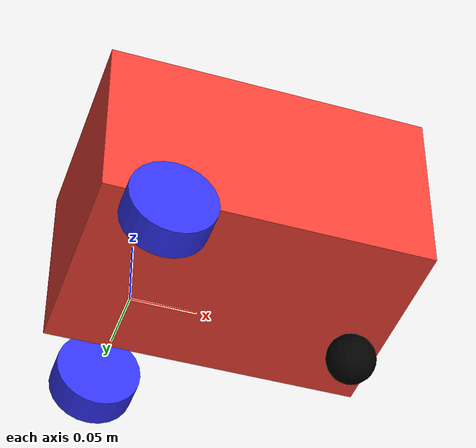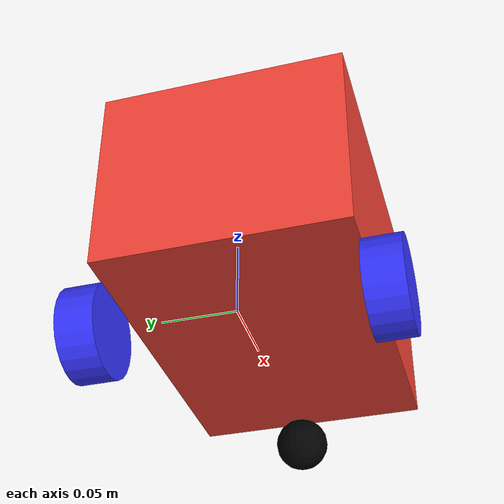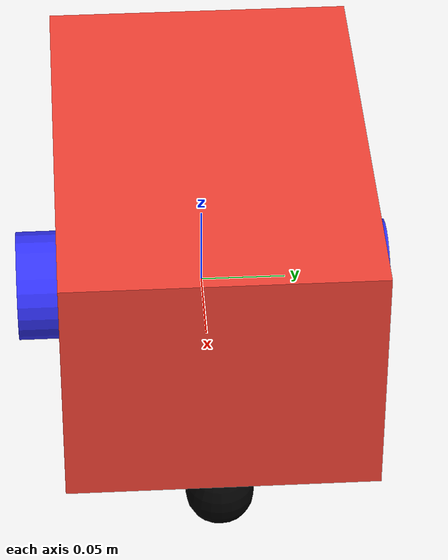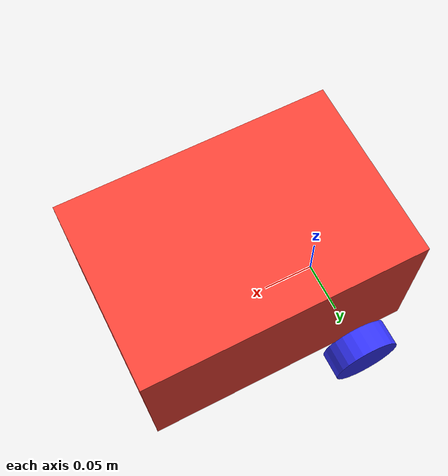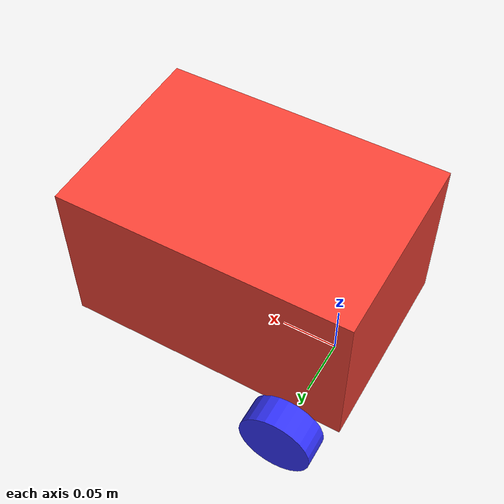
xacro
<?xml version="1.0"?>
<robot xmlns:xacro="http://www.ros.org/wiki/xacro">
<!--setting material properties which will be used later-->
<xacro:include filename="inertia.xacro"/>
<!-- Import the wheel macro -->
<xacro:include filename="$(find diff_drive_robot)/robot_urdf_description/wheel_macro.xacro"/>

<!-- Define chassisproperties -->
<xacro:property name="chassis_length" value="0.25"/>
<xacro:property name="chassis_width" value="0.17"/>
<xacro:property name="chassis_height" value="0.14"/>
<xacro:property name="chassis_mass" value="0.7"/>
<xacro:property name="chassis_offset_x" value="0.045"/> <!-- relative base link-->
<xacro:property name= "chassis_offset_z" value= "0.023"/> <!-- relative base link-->
<!--  wheel properties -->
<xacro:property name="driven_wheel_thickness" value="0.026"/>
<xacro:property name="driven_wheel_radius" value="0.0325"/>
<xacro:property name="driven_wheel_mass" value="0.02"/> <!--change with actual mass -->
<xacro:property name="driven_wheel_offset_y" value ="0.0975"/> <!-- relative to base link-->
<!--  castor wheel properties -->
<xacro:property name="castor_wheel_thickness" value="0.022"/> <!--used for cylinderical castor wheel-->
<xacro:property name="castor_wheel_radius" value="0.019"/>
<xacro:property name="castor_wheel_mass" value="0.01"/> <!--change with actual mass -->
<xacro:property name= "castor_wheel_offset_x" value="0.215"/>
<!-- relative to chassis-->
<xacro:property name= "castor_wheel_offset_z" value="${-0.035}"/> <!-- relative to chassis-->

<!--constants-->
<xacro:property name="PI" value="3.14159"/>

<!-- setting material colors-->

<material name="White">
    <color rgba="1 1 1 1"/>
</material>
<material name="Orange">
    <color rgba="1 0.3 0.1 1"/>
</material>
<material name="Blue">
    <color rgba="0.2 0.2 1 1"/>
</material>
<material name="Black">
    <color rgba="0 0 0 1"/>
</material>
<material name="Brown">
    <color rgba="${222/255} ${207/255} ${195/255} 1.0"/>
</material>
<material name="Red">
    <color rgba="0.96 0.26 0.21 1.0"/>
</material>

<material name="Dark">
    <color rgba="0.3 0.3 0.3 1.0"/>
</material>

<material name="light_black">
    <color rgba="0.4 0.4 0.4 1.0"/>
</material>
<material name="green">
    <color rgba="0.0 0.8 0.0 1.0"/>
  </material>

  <material name="grey">
    <color rgba="0.5 0.5 0.5 1.0"/>
  </material>

<!--setting up the base link-->
<link name="base_link">
</link>

<!-- adding base foot print link for simultanuous localization and mapping-->
<link name="base_footprint">
</link>

<joint name ="base_footprint_joint" type="fixed">
    <parent link="base_link"/>
    <child link="base_footprint"/>
    <origin xyz="0 0 0" rpy="0 0 0"/>
</joint>

<!--##################### robot chassis link ##################-->

<link name="chassis_link">
    <visual>
        <origin xyz="${chassis_length/2} 0 ${chassis_height/2}"/> <!-- this is relative to chassis link-->
        <geometry>
            <box size="${chassis_length} ${chassis_width} ${chassis_height}"/>
        </geometry>
        <material name="Red"/>
    </visual>
    <collision>
        <origin xyz="${chassis_length/2} 0 ${chassis_height/2}"/>
        <geometry>
            <box size="${chassis_length} ${chassis_width} ${chassis_height}"/>
        </geometry>
    </collision>
    <xacro:chassis_inertia mass="${chassis_mass}" x="${chassis_length}" y="${chassis_width}" z="${chassis_height}">
        <origin xyz="${chassis_length/2} 0 ${chassis_height/2}" rpy="0 0 0"/>
    </xacro:chassis_inertia>
</link>

<joint name="chassis_joint" type="fixed">
    <parent link="base_link"/>
    <child link="chassis_link"/>
    <origin xyz="${-chassis_offset_x} 0 ${chassis_offset_z}"/> <!-- change to wheel x and z offset after measurement for real robot-->
</joint>
 <!--adding gazebo reference for displaying the exact color of the robot-->
<gazebo reference="chassis_link">
    <material>Gazebo/Red</material>
</gazebo>

<!-- Use the macro for left and right wheels -->
<xacro:wheel_link
    wheel_name="left_wheel"
    wheel_radius ="${driven_wheel_radius}"
    wheel_length ="${driven_wheel_thickness}"
    wheel_mass="${driven_wheel_mass}"
    y_offset="${driven_wheel_offset_y}"
    axis_direction="-${PI/2}"
    axis_of_rotation = "1" /> <!-- Indicates rotation of the wheels along the Z axis-->

<xacro:wheel_link
    wheel_name="right_wheel"
    wheel_radius="${driven_wheel_radius}"
    wheel_length="${driven_wheel_thickness}"
    wheel_mass="${driven_wheel_mass}"
    y_offset="-${driven_wheel_offset_y}"
    axis_direction="${PI/2}"
    axis_of_rotation = "-1" /> <!-- Indicates rotation of the wheels along the Z axis-->

<!-- caster wheel link-->
<link name="castor_wheel">
    <visual>
        <geometry>
            <sphere radius="${castor_wheel_radius}"/>
        </geometry>
        <material name="Black"/>
    </visual>
    <collision>
        <geometry>
            <sphere radius="${castor_wheel_radius}"/>
        </geometry>
    </collision>
    <xacro:inertia_of_sphere mass="${castor_wheel_mass}" radius="${castor_wheel_radius}">
        <origin xyz="0 0 0" rpy="0 0 0"/>
    </xacro:inertia_of_sphere>
</link>

<gazebo reference="castor_wheel">
    <material>Gazebo/Black</material>
    <mu1 value="0.001"/>
    <mu2 value="0.001"/>
</gazebo>

<joint name="castor_wheel_joint" type="fixed">
    <parent link="chassis_link"/>
    <child link="castor_wheel"/>
    <origin xyz="${castor_wheel_offset_x} 0 ${castor_wheel_offset_z}"/>
</joint>

</robot>

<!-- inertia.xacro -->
<robot xmlns:xacro="http://www.ros.org/wiki/xacro">

    <!-- Specify some standard inertial calculations https://en.wikipedia.org/wiki/List_of_moments_of_inertia -->
    <!-- These make use of xacro's mathematical functionality -->
<xacro:macro name="inertia_of_sphere" params="mass radius *origin">
    <inertial>
        <xacro:insert_block name="origin"/>
        <mass value="${mass}"/>
        <inertia ixx="${(2.0/5.0) * mass * (radius * radius)}" ixy="0.0" ixz="0.0"
                 iyy="${(2.0/5.0) * mass * (radius * radius)}" iyz="0.0"
                 izz="${(2.0/5.0) * mass * (radius * radius)}"/>
    </inertial>
</xacro:macro>

<xacro:macro name="chassis_inertia" params="mass x y z *origin">
    <inertial>
        <xacro:insert_block name="origin"/>
        <mass value="${mass}"/>
        <inertia ixx="${(1.0/12.0) * mass * (y * y + z * z)}" ixy="0.0" ixz="0.0"
                 iyy="${(1.0/12.0) * mass * (x * x + z * z)}" iyz="0.0"
                 izz="${(1.0/12.0) * mass * (x * x + y * y)}"/>
    </inertial>
</xacro:macro>

<xacro:macro name="inertia_of_cylinder" params="mass length radius *origin">
    <inertial>
        <xacro:insert_block name="origin"/>
        <mass value="${mass}"/>
        <inertia ixx="${(1.0/12.0) * mass * (3 * radius * radius + length * length)}" ixy="0.0" ixz="0.0"
                 iyy="${(1.0/12.0) * mass * (3 * radius * radius + length * length)}" iyz="0.0"
                 izz="${(1.0/2.0) * mass * (radius * radius)}"/>
    </inertial>
</xacro:macro>

</robot>

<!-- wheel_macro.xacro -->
<robot xmlns:xacro="http://www.ros.org/wiki/xacro">

    <!-- Define wheel macro -->
    <xacro:macro name="wheel_link" params="wheel_name wheel_radius wheel_length wheel_mass y_offset axis_direction axis_of_rotation">
        <link name="${wheel_name}">
            <visual>
                <geometry>
                    <cylinder radius="${wheel_radius}" length="${wheel_length}"/>
                </geometry>
                <material name="Blue"/>
            </visual>
            <collision>
                <geometry>
                    <cylinder radius="${wheel_radius}" length="${wheel_length}"/>
                </geometry>
            </collision>
            <xacro:inertia_of_cylinder mass="${wheel_mass}" radius="${wheel_radius}" length="${wheel_length}">
                <origin xyz="0 0 0" rpy="0 0 0"/>
            </xacro:inertia_of_cylinder>
        </link>

        <gazebo reference="${wheel_name}">
            <material>Gazebo/Blue</material>
            <mu1 value="0.5"/>
            <mu2 value="0.5"/>
        </gazebo>

        <joint name="${wheel_name}_joint" type="continuous">
            <parent link="base_link"/>
            <child link="${wheel_name}"/>
            <origin xyz="0 ${y_offset} 0" rpy="${axis_direction} 0 0"/>
            <axis xyz="0 0 ${axis_of_rotation}"/>
        </joint>
    </xacro:macro>

</robot>
